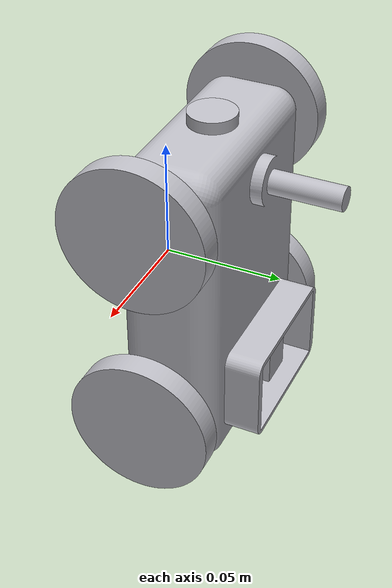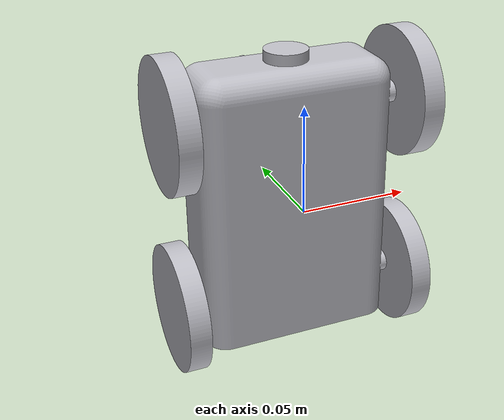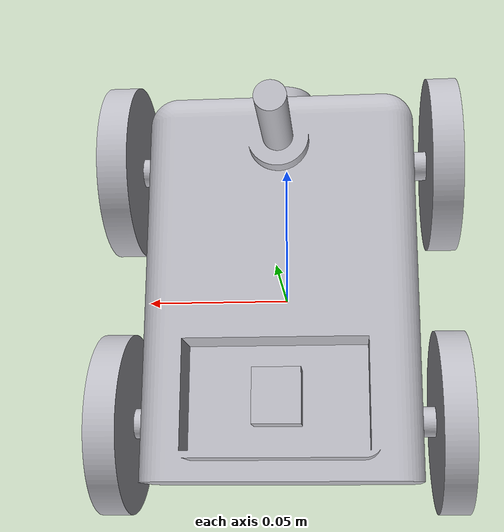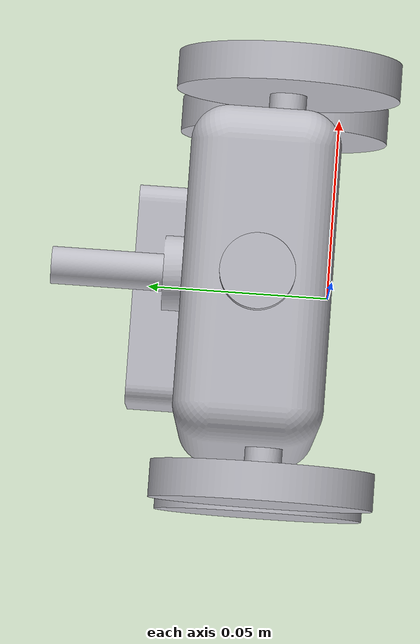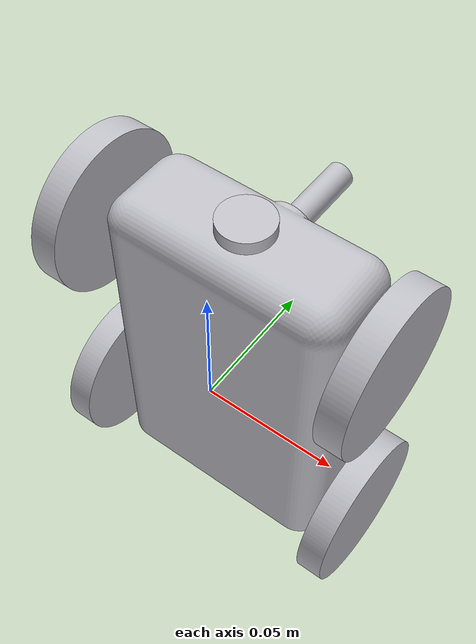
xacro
<?xml version="1.0" ?>
<robot name="final_project" xmlns:xacro="http://www.ros.org/wiki/xacro">

<xacro:include filename="$(find final_project_description)/urdf/materials.xacro" />
<xacro:include filename="$(find final_project_description)/urdf/final_project.trans" />
<xacro:include filename="$(find final_project_description)/urdf/final_project.gazebo" />
<link name="base_link">
  <inertial>
    <origin xyz="-0.0038261578149996634 0.044429126297514804 -0.014040038900409087" rpy="0 0 0"/>
    <mass value="0.48964662836381656"/>
    <inertia ixx="0.000748" iyy="0.000997" izz="0.000384" ixy="0.0" iyz="6e-06" ixz="-0.0"/>
  </inertial>
  <visual>
    <origin xyz="0 0 0" rpy="0 0 0"/>
    <geometry>
      <mesh filename="file://$(find final_project_description)/meshes/base_link.stl" scale="0.001 0.001 0.001"/>
    </geometry>
    <material name="silver"/>
  </visual>
  <collision>
    <origin xyz="0 0 0" rpy="0 0 0"/>
    <geometry>
      <mesh filename="file://$(find final_project_description)/meshes/base_link.stl" scale="0.001 0.001 0.001"/>
    </geometry>
  </collision>
</link>

<link name="right_front_wheel_1">
  <inertial>
    <origin xyz="-0.005000157814999649 3.114103060281037e-07 4.006736244871467e-07" rpy="0 0 0"/>
    <mass value="0.026295130510546567"/>
    <inertia ixx="1.2e-05" iyy="6e-06" izz="6e-06" ixy="0.0" iyz="0.0" ixz="-0.0"/>
  </inertial>
  <visual>
    <origin xyz="0.053826 -0.038961 -0.032067" rpy="0 0 0"/>
    <geometry>
      <mesh filename="file://$(find final_project_description)/meshes/right_front_wheel_1.stl" scale="0.001 0.001 0.001"/>
    </geometry>
    <material name="silver"/>
  </visual>
  <collision>
    <origin xyz="0.053826 -0.038961 -0.032067" rpy="0 0 0"/>
    <geometry>
      <mesh filename="file://$(find final_project_description)/meshes/right_front_wheel_1.stl" scale="0.001 0.001 0.001"/>
    </geometry>
  </collision>
</link>

<link name="left_front_wheel_1">
  <inertial>
    <origin xyz="0.004999842185000179 3.1141030598647035e-07 4.0067362440388e-07" rpy="0 0 0"/>
    <mass value="0.026295130510546567"/>
    <inertia ixx="1.2e-05" iyy="6e-06" izz="6e-06" ixy="0.0" iyz="0.0" ixz="-0.0"/>
  </inertial>
  <visual>
    <origin xyz="-0.046174 -0.038961 -0.032067" rpy="0 0 0"/>
    <geometry>
      <mesh filename="file://$(find final_project_description)/meshes/left_front_wheel_1.stl" scale="0.001 0.001 0.001"/>
    </geometry>
    <material name="silver"/>
  </visual>
  <collision>
    <origin xyz="-0.046174 -0.038961 -0.032067" rpy="0 0 0"/>
    <geometry>
      <mesh filename="file://$(find final_project_description)/meshes/left_front_wheel_1.stl" scale="0.001 0.001 0.001"/>
    </geometry>
  </collision>
</link>

<link name="right_back_wheel_1">
  <inertial>
    <origin xyz="-0.005000157814999538 3.114103059378981e-07 4.006736245079634e-07" rpy="0 0 0"/>
    <mass value="0.02629513051054656"/>
    <inertia ixx="1.2e-05" iyy="6e-06" izz="6e-06" ixy="0.0" iyz="0.0" ixz="-0.0"/>
  </inertial>
  <visual>
    <origin xyz="0.053826 -0.038961 0.057933" rpy="0 0 0"/>
    <geometry>
      <mesh filename="file://$(find final_project_description)/meshes/right_back_wheel_1.stl" scale="0.001 0.001 0.001"/>
    </geometry>
    <material name="silver"/>
  </visual>
  <collision>
    <origin xyz="0.053826 -0.038961 0.057933" rpy="0 0 0"/>
    <geometry>
      <mesh filename="file://$(find final_project_description)/meshes/right_back_wheel_1.stl" scale="0.001 0.001 0.001"/>
    </geometry>
  </collision>
</link>

<link name="left_back_wheel_1">
  <inertial>
    <origin xyz="0.004999842185000297 3.114103059032036e-07 4.0067362440388e-07" rpy="0 0 0"/>
    <mass value="0.02629513051054656"/>
    <inertia ixx="1.2e-05" iyy="6e-06" izz="6e-06" ixy="0.0" iyz="0.0" ixz="-0.0"/>
  </inertial>
  <visual>
    <origin xyz="-0.046174 -0.038961 0.057933" rpy="0 0 0"/>
    <geometry>
      <mesh filename="file://$(find final_project_description)/meshes/left_back_wheel_1.stl" scale="0.001 0.001 0.001"/>
    </geometry>
    <material name="silver"/>
  </visual>
  <collision>
    <origin xyz="-0.046174 -0.038961 0.057933" rpy="0 0 0"/>
    <geometry>
      <mesh filename="file://$(find final_project_description)/meshes/left_back_wheel_1.stl" scale="0.001 0.001 0.001"/>
    </geometry>
  </collision>
</link>

<link name="lidar_1">
  <inertial>
    <origin xyz="-1.5781526106805124e-07 0.015000311410305958 4.006736244871467e-07" rpy="0 0 0"/>
    <mass value="0.002497566159603939"/>
    <inertia ixx="0.0" iyy="0.0" izz="0.0" ixy="-0.0" iyz="0.0" ixz="-0.0"/>
  </inertial>
  <visual>
    <origin xyz="0.003826 -0.068961 -0.032067" rpy="0 0 0"/>
    <geometry>
      <mesh filename="file://$(find final_project_description)/meshes/lidar_1.stl" scale="0.001 0.001 0.001"/>
    </geometry>
    <material name="silver"/>
  </visual>
  <collision>
    <origin xyz="0.003826 -0.068961 -0.032067" rpy="0 0 0"/>
    <geometry>
      <mesh filename="file://$(find final_project_description)/meshes/lidar_1.stl" scale="0.001 0.001 0.001"/>
    </geometry>
  </collision>
</link>

<link name="camera_1">
  <inertial>
    <origin xyz="-1.5781499976058252e-07 3.114103060350426e-07 0.002500400673624441" rpy="0 0 0"/>
    <mass value="0.0016650441064025904"/>
    <inertia ixx="0.0" iyy="0.0" izz="0.0" ixy="0.0" iyz="0.0" ixz="-0.0"/>
  </inertial>
  <visual>
    <origin xyz="0.003826 -0.043961 -0.052067" rpy="0 0 0"/>
    <geometry>
      <mesh filename="file://$(find final_project_description)/meshes/camera_1.stl" scale="0.001 0.001 0.001"/>
    </geometry>
    <material name="silver"/>
  </visual>
  <collision>
    <origin xyz="0.003826 -0.043961 -0.052067" rpy="0 0 0"/>
    <geometry>
      <mesh filename="file://$(find final_project_description)/meshes/camera_1.stl" scale="0.001 0.001 0.001"/>
    </geometry>
  </collision>
</link>

<link name="candy_1">
  <inertial>
    <origin xyz="-1.5781499960879422e-07 0.005000311410306019 4.006736244802078e-07" rpy="0 0 0"/>
    <mass value="0.002712844435228289"/>
    <inertia ixx="0.0" iyy="0.0" izz="0.0" ixy="0.0" iyz="0.0" ixz="-0.0"/>
  </inertial>
  <visual>
    <origin xyz="0.003826 -0.063961 0.052933" rpy="0 0 0"/>
    <geometry>
      <mesh filename="file://$(find final_project_description)/meshes/candy_1.stl" scale="0.001 0.001 0.001"/>
    </geometry>
    <material name="silver"/>
  </visual>
  <collision>
    <origin xyz="0.003826 -0.063961 0.052933" rpy="0 0 0"/>
    <geometry>
      <mesh filename="file://$(find final_project_description)/meshes/candy_1.stl" scale="0.001 0.001 0.001"/>
    </geometry>
  </collision>
</link>

<joint name="Revolute 7" type="continuous">
  <origin xyz="-0.053826 0.038961 0.032067" rpy="0 0 0"/>
  <parent link="base_link"/>
  <child link="right_front_wheel_1"/>
  <axis xyz="-1.0 0.0 0.0"/>
</joint>

<joint name="Revolute 8" type="continuous">
  <origin xyz="0.046174 0.038961 0.032067" rpy="0 0 0"/>
  <parent link="base_link"/>
  <child link="left_front_wheel_1"/>
  <axis xyz="1.0 -0.0 -0.0"/>
</joint>

<joint name="Revolute 9" type="continuous">
  <origin xyz="-0.053826 0.038961 -0.057933" rpy="0 0 0"/>
  <parent link="base_link"/>
  <child link="right_back_wheel_1"/>
  <axis xyz="-1.0 0.0 0.0"/>
</joint>

<joint name="Revolute 10" type="continuous">
  <origin xyz="0.046174 0.038961 -0.057933" rpy="0 0 0"/>
  <parent link="base_link"/>
  <child link="left_back_wheel_1"/>
  <axis xyz="1.0 -0.0 -0.0"/>
</joint>

<joint name="Rigid 12" type="fixed">
  <origin xyz="-0.003826 0.068961 0.032067" rpy="0 0 0"/>
  <parent link="base_link"/>
  <child link="lidar_1"/>
</joint>

<joint name="Rigid 13" type="fixed">
  <origin xyz="-0.003826 0.043961 0.052067" rpy="0 0 0"/>
  <parent link="base_link"/>
  <child link="camera_1"/>
</joint>

<joint name="Rigid 14" type="fixed">
  <origin xyz="-0.003826 0.063961 -0.052933" rpy="0 0 0"/>
  <parent link="base_link"/>
  <child link="candy_1"/>
</joint>

</robot>

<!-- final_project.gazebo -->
<robot name="final_project" xmlns:xacro="http://www.ros.org/wiki/xacro" >

<xacro:property name="body_color" value="Gazebo/Silver" />

<gazebo>
  <plugin name="control" filename="libgazebo_ros_control.so"/>
</gazebo>
<gazebo reference="base_link">
  <material>${body_color}</material>
  <mu1>0.2</mu1>
  <mu2>0.2</mu2>
  <self_collide>true</self_collide>
  <gravity>true</gravity>
</gazebo>

<gazebo reference="right_front_wheel_1">
  <material>${body_color}</material>
  <mu1>0.2</mu1>
  <mu2>0.2</mu2>
  <self_collide>true</self_collide>
</gazebo>

<gazebo reference="left_front_wheel_1">
  <material>${body_color}</material>
  <mu1>0.2</mu1>
  <mu2>0.2</mu2>
  <self_collide>true</self_collide>
</gazebo>

<gazebo reference="right_back_wheel_1">
  <material>${body_color}</material>
  <mu1>0.2</mu1>
  <mu2>0.2</mu2>
  <self_collide>true</self_collide>
</gazebo>

<gazebo reference="left_back_wheel_1">
  <material>${body_color}</material>
  <mu1>0.2</mu1>
  <mu2>0.2</mu2>
  <self_collide>true</self_collide>
</gazebo>

<gazebo reference="lidar_1">
  <material>${body_color}</material>
  <mu1>0.2</mu1>
  <mu2>0.2</mu2>
  <self_collide>true</self_collide>
</gazebo>

<gazebo reference="camera_1">
  <material>${body_color}</material>
  <mu1>0.2</mu1>
  <mu2>0.2</mu2>
  <self_collide>true</self_collide>
</gazebo>

<gazebo reference="candy_1">
  <material>${body_color}</material>
  <mu1>0.2</mu1>
  <mu2>0.2</mu2>
  <self_collide>true</self_collide>
</gazebo>

</robot>
